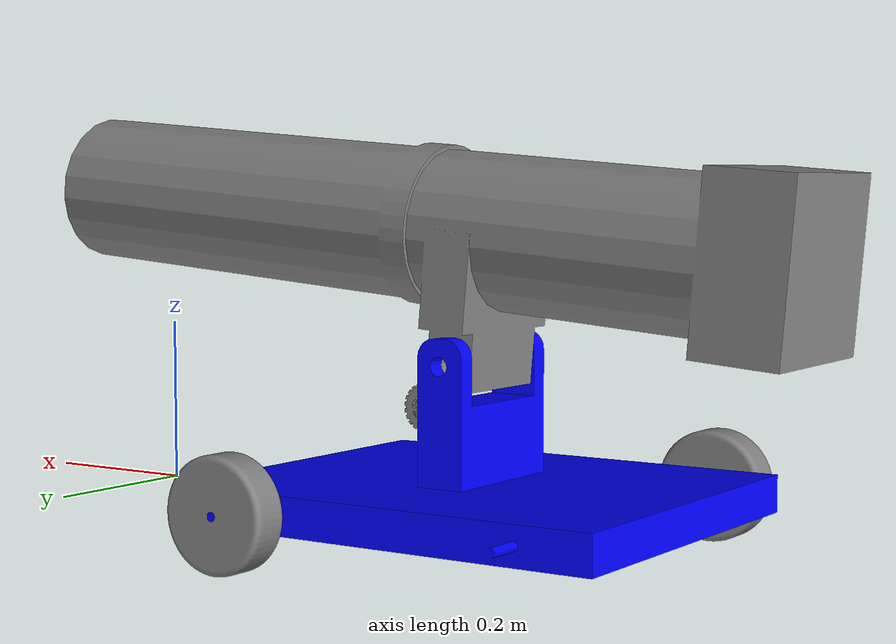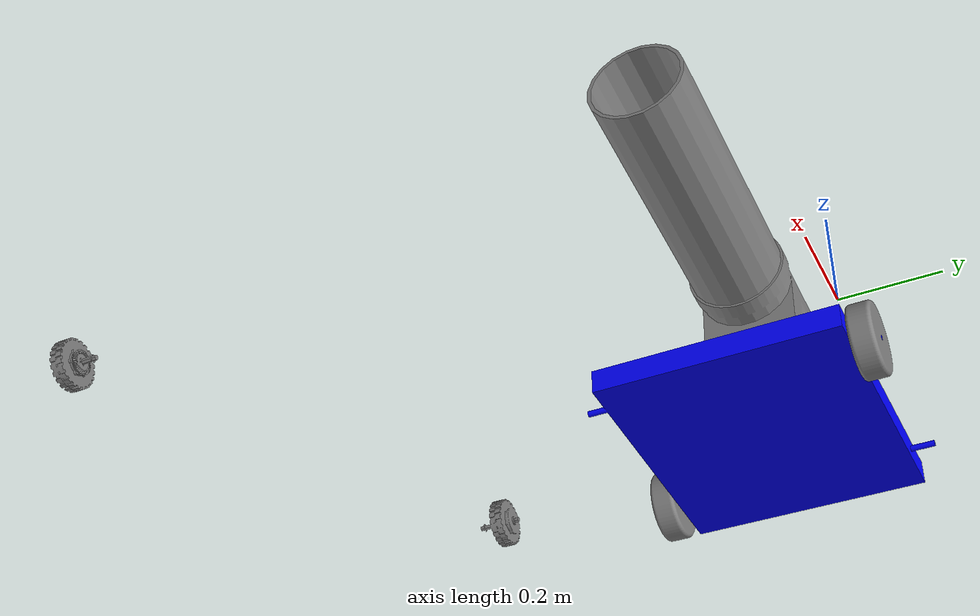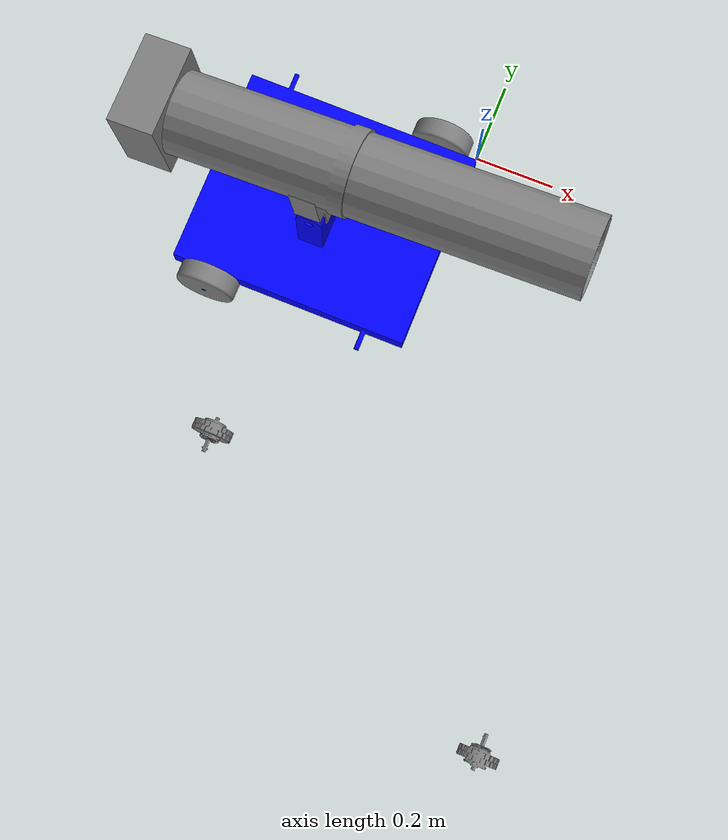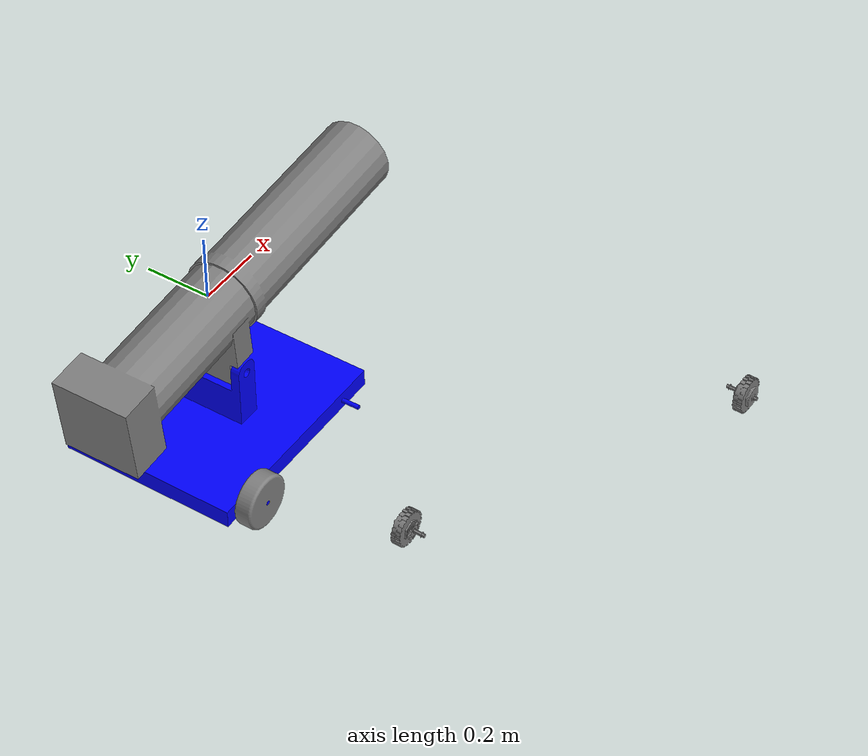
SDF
<?xml version="1.0" encoding="utf-8"?>
<sdf version="1.5">
  <model name="CannonTest">
    <pose>0 0 -0.06096 0 0 0</pose>
    <plugin name="clock" filename="libclock.so">
      <topic>/gazebo/frc/time</topic>
    </plugin>
    <link name="Chassis">
      <gravity>1</gravity>
      <self_collide>0</self_collide>
      <pose>-0.304801886904008 -0.254006226547669 0.0342053428597836 1.57604641753514 2.55667894358535E-05 -0.00194517599704935</pose>
      <must_be_base_link>1</must_be_base_link>
      <velocity_decay>
        <linear>0</linear>
        <angular>0</angular>
      </velocity_decay>
      <inertial>
        <mass>47.0466978789159</mass>
        <pose>0 0 0 0 0 0</pose>
        <inertia>
          <ixx>0.989950796352645</ixx>
          <ixy>1.32828801762227E-05</ixy>
          <ixz>0.000743981979456903</ixz>
          <iyy>2.25730816994425</iyy>
          <iyz>0.00469357722979551</iyz>
          <izz>1.37238781735278</izz>
        </inertia>
      </inertial>
      <collision name="Chassis_collision">
        <pose>-0.0748344432459736 -0.00933524057497721 1.23379099043316 0 0 0</pose>
        <geometry>
          <mesh>
            <scale>1 1 1</scale>
            <uri>model://CannonTest/meshes/Chassis_col.STL</uri>
          </mesh>
        </geometry>
        <surface>
          <contact>
            <ode />
          </contact>
          <friction>
            <ode>
              <mu>0</mu>
              <mu2>0</mu2>
            </ode>
          </friction>
        </surface>
      </collision>
      <visual name="Chassis_visual">
        <pose>-0.0748344432459736 -0.00933524057497721 1.23379099043316 0 0 0</pose>
        <material>
          <ambient>0 0 1 1</ambient>
          <diffuse>0 0 1 1</diffuse>
        </material>
        <geometry>
          <mesh>
            <scale>1 1 1</scale>
            <uri>model://CannonTest/meshes/Chassis.STL</uri>
          </mesh>
        </geometry>
      </visual>
    </link>
    <link name="Cannon">
      <gravity>1</gravity>
      <self_collide>0</self_collide>
      <pose>-0.305412158685821 -0.253708870998663 0.347813651497971 1.57604641753514 2.55667894358535E-05 -0.00194517599704935</pose>
      <must_be_base_link>0</must_be_base_link>
      <velocity_decay>
        <linear>0</linear>
        <angular>0</angular>
      </velocity_decay>
      <inertial>
        <mass>16.2214336067074</mass>
        <pose>0 0 0 0 0 0</pose>
        <inertia>
          <ixx>0.18819260041476</ixx>
          <ixy>0.0971708710012752</ixy>
          <ixz>0.00266085572570506</ixz>
          <iyy>1.24044832835472</iyy>
          <iyz>0.000551716125415144</iyz>
          <izz>1.290887587529</izz>
        </inertia>
      </inertial>
      <collision name="Cannon_collision">
        <pose>-0.0742155762528026 -0.322937656538248 1.23573361868362 0 0 0</pose>
        <geometry>
          <mesh>
            <scale>1 1 1</scale>
            <uri>model://CannonTest/meshes/Cannon_col.STL</uri>
          </mesh>
        </geometry>
        <surface>
          <contact>
            <ode />
          </contact>
          <friction>
            <ode>
              <mu>0</mu>
              <mu2>0</mu2>
            </ode>
          </friction>
        </surface>
      </collision>
      <visual name="Cannon_visual">
        <pose>-0.0742155762528026 -0.322937656538248 1.23573361868362 0 0 0</pose>
        <material>
          <ambient>0.501960784313725 0.501960784313725 0.501960784313725 1</ambient>
          <diffuse>0.501960784313725 0.501960784313725 0.501960784313725 1</diffuse>
        </material>
        <geometry>
          <mesh>
            <scale>1 1 1</scale>
            <uri>model://CannonTest/meshes/Cannon.STL</uri>
          </mesh>
        </geometry>
      </visual>
    </link>
    <joint name="Chassis-Cannon" type="revolute">
      <parent>Chassis</parent>
      <child>Cannon</child>
      <pose>0.00188604688216468 -0.141180400176024 0.000882612721964993 0 4.71798787758595 0.00525014047221485</pose>
      <axis>
        <xyz>0.999979697629611 0.00523982167006666 0.00362609948265424</xyz>
        <dynamics>
          <damping>50</damping>
          <friction>10</friction>
        </dynamics>
        <limit>
          <upper>0.53</upper>
          <lower>-0.1</lower>
          <effort>50</effort>
        </limit>
      </axis>
    </joint>
    <link name="Piston">
      <gravity>1</gravity>
      <self_collide>0</self_collide>
      <pose>-0.361684981384648 -0.253567641641205 0.372062562321239 1.57604641753514 2.55667894358535E-05 -0.00194517599704935</pose>
      <must_be_base_link>0</must_be_base_link>
      <velocity_decay>
        <linear>0</linear>
        <angular>0</angular>
      </velocity_decay>
      <inertial>
        <mass>0.20013296598214</mass>
        <pose>0 0 0 0 0 0</pose>
        <inertia>
          <ixx>0.00109196808527621</ixx>
          <ixy>0.00112281064309733</ixy>
          <ixz>3.07312723972425E-05</ixz>
          <iyy>0.0138254143864903</iyy>
          <iyz>4.1262546216014E-06</iyz>
          <izz>0.0139239279481206</izz>
        </inertia>
      </inertial>
      <collision name="Piston_collision">
        <pose>-0.0179419653497652 -0.347184627675274 1.23589268770501 0 0 0</pose>
        <geometry>
          <mesh>
            <scale>1 1 1</scale>
            <uri>model://CannonTest/meshes/Piston_col.STL</uri>
          </mesh>
        </geometry>
        <surface>
          <contact>
            <ode />
          </contact>
          <friction>
            <ode>
              <mu>0.1</mu>
              <mu2>0.1</mu2>
            </ode>
          </friction>
        </surface>
      </collision>
      <visual name="Piston_visual">
        <pose>-0.0179419653497652 -0.347184627675274 1.23589268770501 0 0 0</pose>
        <material>
          <ambient>0.501960784313725 1 0 1</ambient>
          <diffuse>0.501960784313725 1 0 1</diffuse>
        </material>
        <geometry>
          <mesh>
            <scale>1 1 1</scale>
            <uri>model://CannonTest/meshes/Piston.STL</uri>
          </mesh>
        </geometry>
      </visual>
    </link>
    <joint name="Cannon-Piston" type="prismatic">
      <parent>Cannon</parent>
      <child>Piston</child>
      <pose>-0.29179232134629 -0.0252224171649086 0.000745162168346081 0 0.00239545555033444 1.59826971230969</pose>
      <axis>
        <xyz>0.0597772234917349 -0.998209201945509 -0.00225226617652929</xyz>
        <dynamics>
          <damping>1</damping>
          <friction>1</friction>
        </dynamics>
        <limit>
          <upper>0.3</upper>
          <lower>0</lower>
          <effort>1000</effort>
        </limit>
      </axis>
    </joint>
    <link name="LFWheel">
      <gravity>1</gravity>
      <self_collide>0</self_collide>
      <pose>-0.1016 0.0253999999999999 0.0254 1.57604641753514 2.55667894358535E-05 -0.00194517599704935</pose>
      <must_be_base_link>0</must_be_base_link>
      <velocity_decay>
        <linear>0</linear>
        <angular>0</angular>
      </velocity_decay>
      <inertial>
        <mass>0.908566110582431</mass>
        <pose>0 0 0 0 0 0</pose>
        <inertia>
          <ixx>0.00150402406235001</ixx>
          <ixy>1.14516931549555E-08</ixy>
          <ixz>2.18119648365671E-06</ixz>
          <iyy>0.00150405072806428</iyy>
          <iyz>5.88713869914117E-06</iyz>
          <izz>0.00262533926591966</izz>
        </inertia>
      </inertial>
      <collision name="LFWheel_collision">
        <pose>-0.277492676837175 0.000933773372974487 1.51354189400286 0 0 0</pose>
        <geometry>
          <mesh>
            <scale>1 1 1</scale>
            <uri>model://CannonTest/meshes/LFWheel_col.STL</uri>
          </mesh>
        </geometry>
        <surface>
          <contact>
            <ode />
          </contact>
          <friction>
            <ode>
              <mu>1</mu>
              <mu2>1</mu2>
            </ode>
          </friction>
        </surface>
      </collision>
      <visual name="LFWheel_visual">
        <pose>-0.277492676837175 0.000933773372974487 1.51354189400286 0 0 0</pose>
        <material>
          <ambient>0.501960784313725 0.501960784313725 0.501960784313725 1</ambient>
          <diffuse>0.501960784313725 0.501960784313725 0.501960784313725 1</diffuse>
        </material>
        <geometry>
          <mesh>
            <scale>1 1 1</scale>
            <uri>model://CannonTest/meshes/LFWheel.STL</uri>
          </mesh>
        </geometry>
      </visual>
    </link>
    <joint name="Chassis-LFWheel" type="revolute">
      <parent>Chassis</parent>
      <child>LFWheel</child>
      <pose>-4.94074391517163E-05 -0.000133352703085026 -0.0253996018858864 0 1.56519742959364 3.14684279406201</pose>
      <axis>
        <xyz>0.999979697629611 0.00523982167006718 -0.00362609948265494</xyz>
        <dynamics>
          <damping>1</damping>
          <friction>10</friction>
        </dynamics>
        <limit>
          <effort>500</effort>
        </limit>
      </axis>
    </joint>
    <link name="RFWheel">
      <gravity>1</gravity>
      <self_collide>0</self_collide>
      <pose>-0.1016 -0.533399999999999 0.0254000000000001 1.57604641753514 2.55667894358535E-05 -0.00194517599704935</pose>
      <must_be_base_link>0</must_be_base_link>
      <velocity_decay>
        <linear>0</linear>
        <angular>0</angular>
      </velocity_decay>
      <inertial>
        <mass>0.908566110582428</mass>
        <pose>0 0 0 0 0 0</pose>
        <inertia>
          <ixx>0.00150402406235</ixx>
          <ixy>1.14516931549511E-08</ixy>
          <ixz>2.18119648365669E-06</ixz>
          <iyy>0.00150405072806427</iyy>
          <iyz>5.88713869914116E-06</iyz>
          <izz>0.00262533926591965</izz>
        </inertia>
      </inertial>
      <collision name="RFWheel_collision">
        <pose>-0.278579640498511 -0.00199998609489609 0.954750652513354 0 0 0</pose>
        <geometry>
          <mesh>
            <scale>1 1 1</scale>
            <uri>model://CannonTest/meshes/RFWheel_col.STL</uri>
          </mesh>
        </geometry>
        <surface>
          <contact>
            <ode />
          </contact>
          <friction>
            <ode>
              <mu>1</mu>
              <mu2>1</mu2>
            </ode>
          </friction>
        </surface>
      </collision>
      <visual name="RFWheel_visual">
        <pose>-0.278579640498511 -0.00199998609489609 0.954750652513354 0 0 0</pose>
        <material>
          <ambient>0.501960784313725 0.501960784313725 0.501960784313725 1</ambient>
          <diffuse>0.501960784313725 0.501960784313725 0.501960784313725 1</diffuse>
        </material>
        <geometry>
          <mesh>
            <scale>1 1 1</scale>
            <uri>model://CannonTest/meshes/RFWheel.STL</uri>
          </mesh>
        </geometry>
      </visual>
    </link>
    <joint name="Chassis-RFWheel" type="revolute">
      <parent>Chassis</parent>
      <child>RFWheel</child>
      <pose>4.94074391517718E-05 0.000133352703085026 0.0253996018858872 0 1.56519742959364 3.14684279406201</pose>
      <axis>
        <xyz>0.999979697629611 0.00523982167006718 -0.00362609948265494</xyz>
        <dynamics>
          <damping>1</damping>
          <friction>10</friction>
        </dynamics>
        <limit>
          <effort>500</effort>
        </limit>
      </axis>
    </joint>
    <link name="LRWheel">
      <gravity>1</gravity>
      <self_collide>0</self_collide>
      <pose>-0.508 0.0254000000000001 0.0254 1.57604641753514 2.55667894358535E-05 -0.00194517599704935</pose>
      <must_be_base_link>0</must_be_base_link>
      <velocity_decay>
        <linear>0</linear>
        <angular>0</angular>
      </velocity_decay>
      <inertial>
        <mass>0.908566110582431</mass>
        <pose>0 0 0 0 0 0</pose>
        <inertia>
          <ixx>0.00150402406235001</ixx>
          <ixy>1.1451693154951E-08</ixy>
          <ixz>2.18119648365682E-06</ixz>
          <iyy>0.00150405072806428</iyy>
          <iyz>5.88713869914118E-06</iyz>
          <izz>0.00262533926591966</izz>
        </inertia>
      </inertial>
      <collision name="LRWheel_collision">
        <pose>0.128906554180441 0.000940013275790875 1.51275133132098 0 0 0</pose>
        <geometry>
          <mesh>
            <scale>1 1 1</scale>
            <uri>model://CannonTest/meshes/LRWheel_col.STL</uri>
          </mesh>
        </geometry>
        <surface>
          <contact>
            <ode />
          </contact>
          <friction>
            <ode>
              <mu>1</mu>
              <mu2>1</mu2>
            </ode>
          </friction>
        </surface>
      </collision>
      <visual name="LRWheel_visual">
        <pose>0.128906554180441 0.000940013275790875 1.51275133132098 0 0 0</pose>
        <material>
          <ambient>0.501960784313725 0.501960784313725 0.501960784313725 1</ambient>
          <diffuse>0.501960784313725 0.501960784313725 0.501960784313725 1</diffuse>
        </material>
        <geometry>
          <mesh>
            <scale>1 1 1</scale>
            <uri>model://CannonTest/meshes/LRWheel.STL</uri>
          </mesh>
        </geometry>
      </visual>
    </link>
    <joint name="Chassis-LRWheel" type="revolute">
      <parent>Chassis</parent>
      <child>LRWheel</child>
      <pose>-4.94074391516608E-05 -0.000133352703085025 -0.0253996018858864 0 1.56519742959364 3.14684279406201</pose>
      <axis>
        <xyz>0.999979697629611 0.00523982167006718 -0.0036260994826548</xyz>
        <dynamics>
          <damping>1</damping>
          <friction>10</friction>
        </dynamics>
        <limit>
          <effort>500</effort>
        </limit>
      </axis>
    </joint>
    <link name="RRWheel">
      <gravity>1</gravity>
      <self_collide>0</self_collide>
      <pose>-0.508 -0.5334 0.0254000000000001 1.57604641753514 2.55667894358535E-05 -0.00194517599704935</pose>
      <must_be_base_link>0</must_be_base_link>
      <velocity_decay>
        <linear>0</linear>
        <angular>0</angular>
      </velocity_decay>
      <inertial>
        <mass>0.908566110582428</mass>
        <pose>0 0 0 0 0 0</pose>
        <inertia>
          <ixx>0.00150402406235</ixx>
          <ixy>1.14516931549462E-08</ixy>
          <ixz>2.18119648365683E-06</ixz>
          <iyy>0.00150405072806427</iyy>
          <iyz>5.88713869914102E-06</iyz>
          <izz>0.00262533926591965</izz>
        </inertia>
      </inertial>
      <collision name="RRWheel_collision">
        <pose>0.127819590519105 -0.00199374619207971 0.95396008983147 0 0 0</pose>
        <geometry>
          <mesh>
            <scale>1 1 1</scale>
            <uri>model://CannonTest/meshes/RRWheel_col.STL</uri>
          </mesh>
        </geometry>
        <surface>
          <contact>
            <ode />
          </contact>
          <friction>
            <ode>
              <mu>1</mu>
              <mu2>1</mu2>
            </ode>
          </friction>
        </surface>
      </collision>
      <visual name="RRWheel_visual">
        <pose>0.127819590519105 -0.00199374619207971 0.95396008983147 0 0 0</pose>
        <material>
          <ambient>0.501960784313725 0.501960784313725 0.501960784313725 1</ambient>
          <diffuse>0.501960784313725 0.501960784313725 0.501960784313725 1</diffuse>
        </material>
        <geometry>
          <mesh>
            <scale>1 1 1</scale>
            <uri>model://CannonTest/meshes/RRWheel.STL</uri>
          </mesh>
        </geometry>
      </visual>
    </link>
    <joint name="Chassis-RRWheel" type="revolute">
      <parent>Chassis</parent>
      <child>RRWheel</child>
      <pose>4.94074391517163E-05 0.000133352703085023 0.025399601885887 0 1.56519742959364 3.14684279406201</pose>
      <axis>
        <xyz>0.999979697629611 0.00523982167006718 -0.0036260994826548</xyz>
        <dynamics>
          <damping>1</damping>
          <friction>10</friction>
        </dynamics>
        <limit>
          <effort>500</effort>
        </limit>
      </axis>
    </joint>
    <plugin name="Chassis-Cannon_motor" filename="libdc_motor.so">
      <joint>Chassis-Cannon</joint>
      <topic>/gazebo/frc/simulator/pwm/9</topic>
      <multiplier>100</multiplier>
    </plugin>
    <plugin name="Chassis-Cannon_encoder" filename="libencoder.so">
      <joint>Chassis-Cannon</joint>
      <topic>/gazebo/frc/simulator/dio/17/18</topic>
      <units>degrees</units>
    </plugin>
    <plugin name="Cannon-Piston_motor" filename="libdc_motor.so">
      <joint>Cannon-Piston</joint>
      <topic>/gazebo/frc/simulator/pwm/10</topic>
      <multiplier>300</multiplier>
    </plugin>
    <plugin name="Chassis-LFWheel_motor" filename="libdc_motor.so">
      <joint>Chassis-LFWheel</joint>
      <topic>/gazebo/frc/simulator/pwm/1</topic>
      <multiplier>30</multiplier>
    </plugin>
    <plugin name="Chassis-LFWheel_encoder" filename="libencoder.so">
      <joint>Chassis-LFWheel</joint>
      <topic>/gazebo/frc/simulator/dio/1/2</topic>
      <units>degrees</units>
    </plugin>
    <plugin name="Chassis-RFWheel_motor" filename="libdc_motor.so">
      <joint>Chassis-RFWheel</joint>
      <topic>/gazebo/frc/simulator/pwm/3</topic>
      <multiplier>30</multiplier>
    </plugin>
    <plugin name="Chassis-RFWheel_encoder" filename="libencoder.so">
      <joint>Chassis-RFWheel</joint>
      <topic>/gazebo/frc/simulator/dio/5/6</topic>
      <units>degrees</units>
    </plugin>
    <plugin name="Chassis-LRWheel_motor" filename="libdc_motor.so">
      <joint>Chassis-LRWheel</joint>
      <topic>/gazebo/frc/simulator/pwm/2</topic>
      <multiplier>30</multiplier>
    </plugin>
    <plugin name="Chassis-LRWheel_encoder" filename="libencoder.so">
      <joint>Chassis-LRWheel</joint>
      <topic>/gazebo/frc/simulator/dio/2/3</topic>
      <units>degrees</units>
    </plugin>
    <plugin name="Chassis-RRWheel_motor" filename="libdc_motor.so">
      <joint>Chassis-RRWheel</joint>
      <topic>/gazebo/frc/simulator/pwm/4</topic>
      <multiplier>30</multiplier>
    </plugin>
    <plugin name="Chassis-RRWheel_encoder" filename="libencoder.so">
      <joint>Chassis-RRWheel</joint>
      <topic>/gazebo/frc/simulator/dio/7/8</topic>
      <units>degrees</units>
    </plugin>
  </model>
</sdf>
